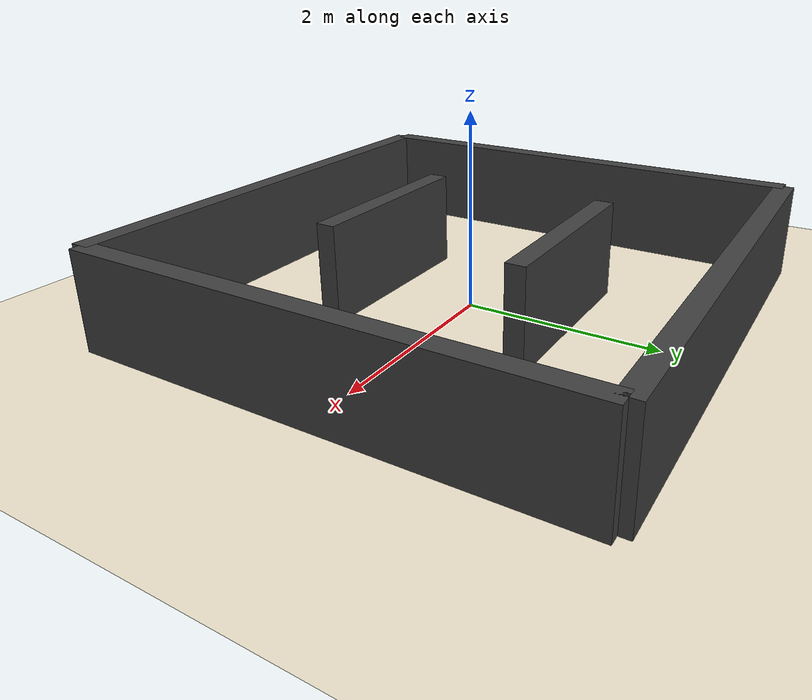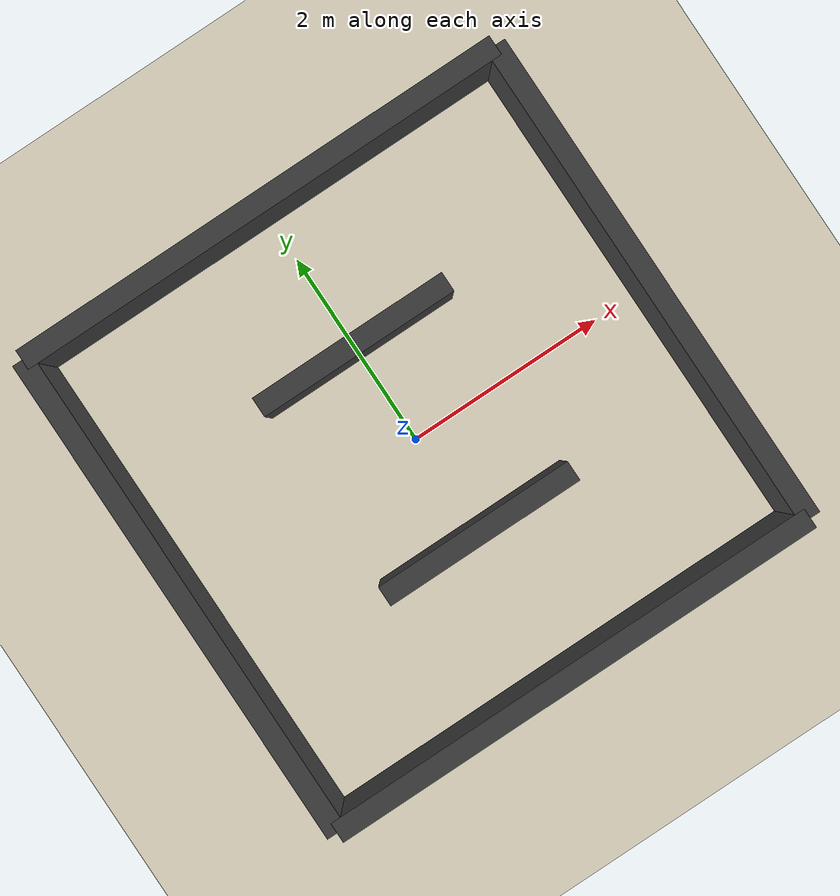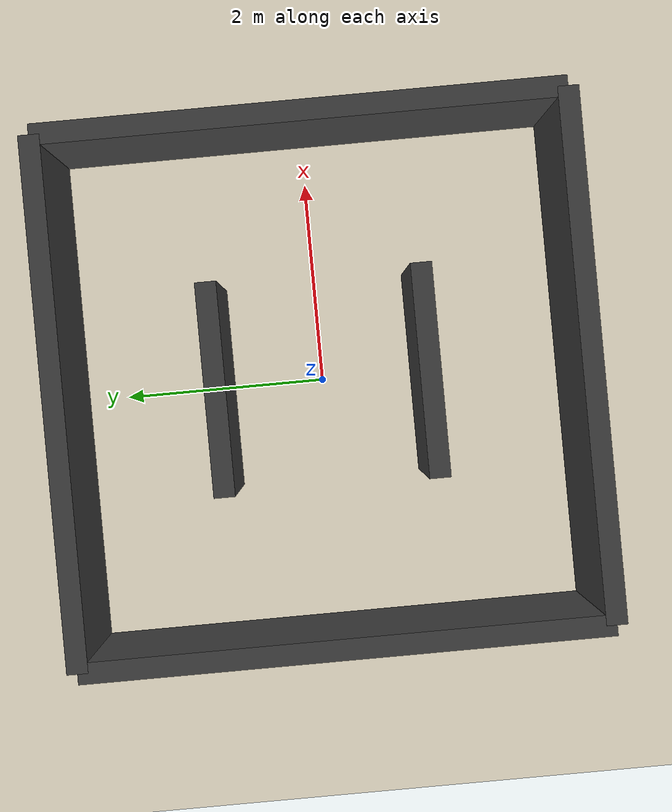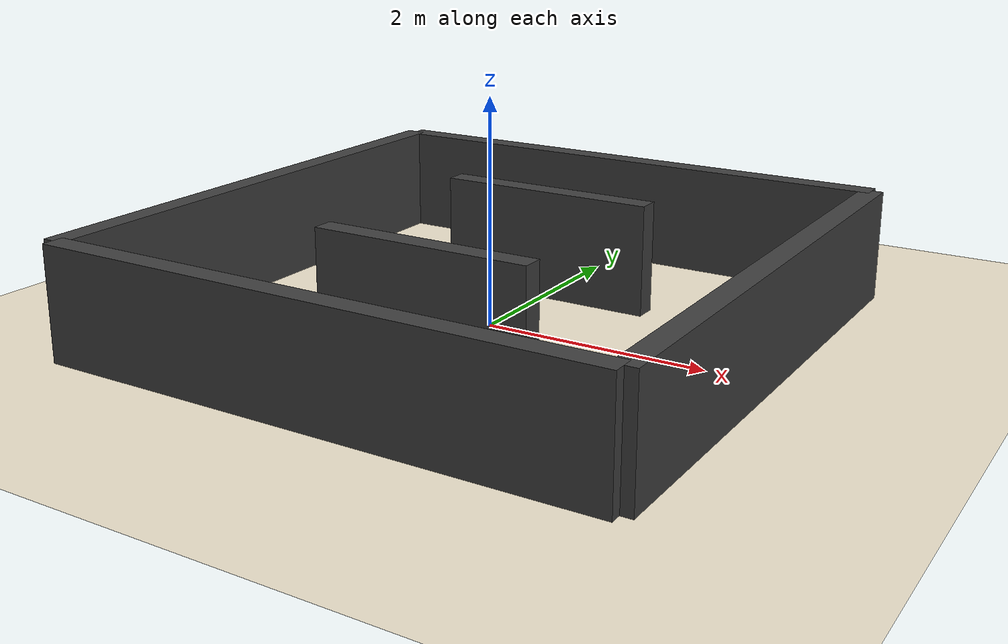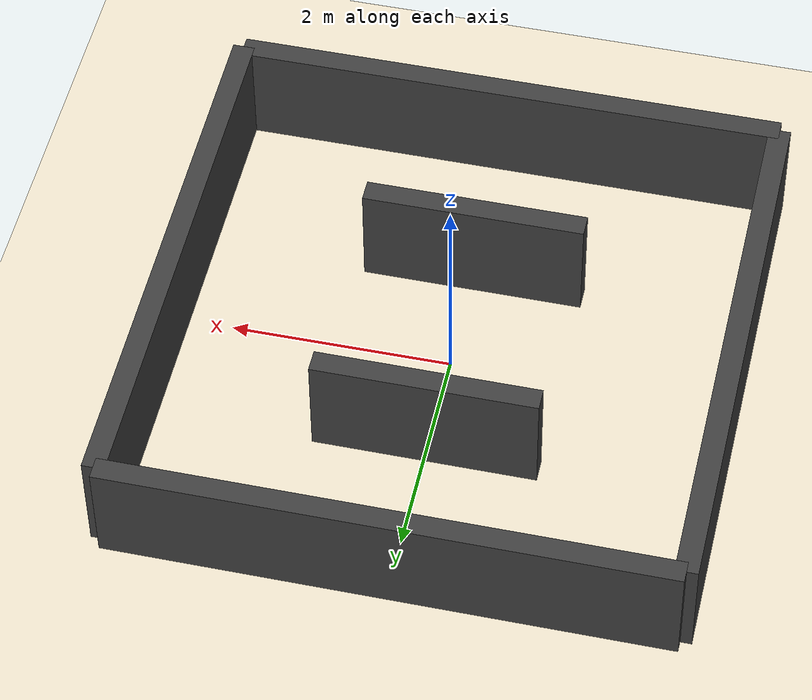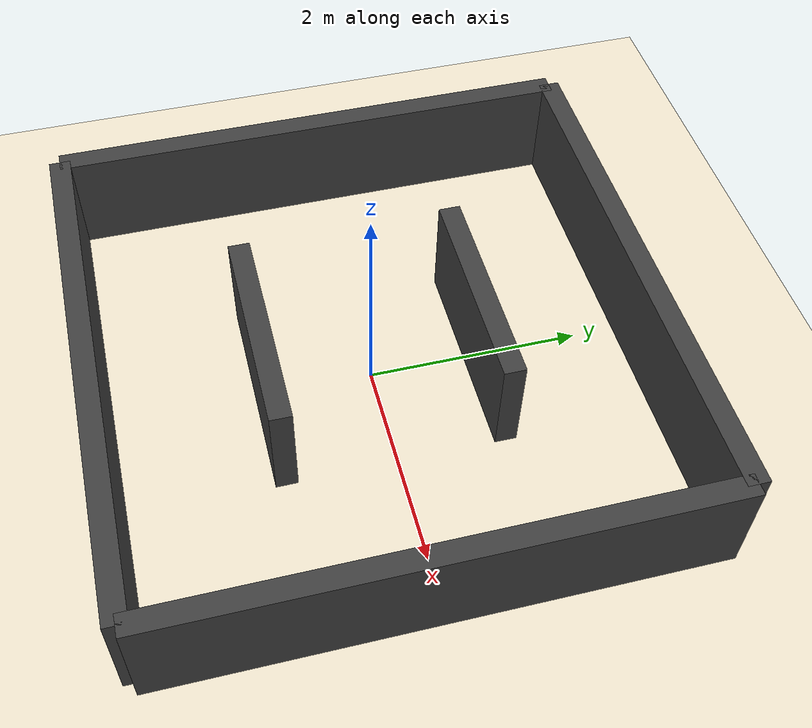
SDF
<?xml version="1.0" ?>

<sdf version="1.8">
  <world name="gazebo_world">
    <physics name='1ms' type='ignored'>
      <max_step_size>0.001</max_step_size>
      <real_time_factor>1</real_time_factor>
      <real_time_update_rate>1000</real_time_update_rate>
    </physics>
    <plugin name='ignition::gazebo::systems::Physics' filename='ignition-gazebo-physics-system'/>
    <plugin name='ignition::gazebo::systems::UserCommands' filename='ignition-gazebo-user-commands-system'/>
    <plugin name='ignition::gazebo::systems::SceneBroadcaster' filename='ignition-gazebo-scene-broadcaster-system'/>
    <plugin filename="ignition-gazebo-sensors-system" name="ignition::gazebo::systems::Sensors">
      <render_engine>ogre2</render_engine>
    </plugin>

    <plugin filename="libignition-gazebo-contact-system.so" name="ignition::gazebo::systems::Contact">
    </plugin>
    <scene>
      <ambient>1.0 1.0 1.0</ambient>
      <background>0.8 0.8 0.8</background>
    </scene>

    <light type="directional" name="sun">
      <cast_shadows>true</cast_shadows>
      <pose>0 0 10 0 0 0</pose>
      <diffuse>0.8 0.8 0.8 1</diffuse>
      <specular>0.2 0.2 0.2 1</specular>
      <attenuation>
        <range>1000</range>
        <constant>0.9</constant>
        <linear>0.01</linear>
        <quadratic>0.001</quadratic>
      </attenuation>
      <direction>-0.5 0.1 -0.9</direction>
    </light>

    <model name="ground_plane">
      <static>true</static>
      <link name="link">
        <collision name="collision">
          <geometry>
            <plane>
              <normal>0 0 1</normal>
              <size>20 20</size>
            </plane>
          </geometry>
        </collision>
        <visual name="visual">
          <geometry>
            <plane>
              <normal>0 0 1</normal>
              <size>20 20</size>
            </plane>
          </geometry>
          <material>
            <ambient>0.94 0.90 0.81 1</ambient>
            <diffuse>0.94 0.90 0.81 1</diffuse>
            <specular>1 1 1 0</specular>
          </material>
        </visual>
      </link>
    </model>

    <model name="simple_world">
      <include>
        <uri>simple_world</uri>
      </include>
    </model>

  </world>
</sdf>

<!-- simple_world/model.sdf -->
<sdf version="1.5">
  <model name="simple_world">
    <static>true</static>
    <link name="link_01">
      <pose>0.0 2.5 0.5 0 0 0</pose>
      <collision name="link_01_collision">
        <geometry>
          <box>
            <size>5.0 0.2 1.0</size>
          </box>
        </geometry>
      </collision>
      <visual name="link_01_visual">
        <cast_shadows>true</cast_shadows>
        <geometry>
          <box>
            <size>5.0 0.2 1.0</size>
          </box>
        </geometry>
        <material>
          <ambient>0.25 0.25 0.25 1.0</ambient>
          <diffuse>0.25 0.25 0.25 1.0</diffuse>
          <specular>0.1 0.1 0.1 1.0</specular>
          <emissive>0.0 0.0 0.0 1.0</emissive>
        </material>
      </visual>
    </link>

    <link name="link_02">
      <pose>0.0 -2.5 0.5 0 0 0</pose>
      <collision name="link_02_collision">
        <geometry>
          <box>
            <size>5.0 0.2 1.0</size>
          </box>
        </geometry>
      </collision>
      <visual name="link_02_visual">
        <cast_shadows>true</cast_shadows>
        <geometry>
          <box>
            <size>5.0 0.2 1.0</size>
          </box>
        </geometry>
        <material>
          <ambient>0.25 0.25 0.25 1.0</ambient>
          <diffuse>0.25 0.25 0.25 1.0</diffuse>
          <specular>0.1 0.1 0.1 1.0</specular>
          <emissive>0.0 0.0 0.0 1.0</emissive>
        </material>
      </visual>
    </link>

    <link name="link_03">
      <pose>2.5 0.0 0.5 0 0 1.5708</pose>
      <collision name="link_03_collision">
        <geometry>
          <box>
            <size>5.0 0.2 1.0</size>
          </box>
        </geometry>
      </collision>
      <visual name="link_03_visual">
        <cast_shadows>true</cast_shadows>
        <geometry>
          <box>
            <size>5.0 0.2 1.0</size>
          </box>
        </geometry>
        <material>
          <ambient>0.25 0.25 0.25 1.0</ambient>
          <diffuse>0.25 0.25 0.25 1.0</diffuse>
          <specular>0.1 0.1 0.1 1.0</specular>
          <emissive>0.0 0.0 0.0 1.0</emissive>
        </material>
      </visual>
    </link>

    <link name="link_04">
      <pose>-2.5 0.0 0.5 0 0 1.5708</pose>
      <collision name="link_04_collision">
        <geometry>
          <box>
            <size>5.0 0.2 1.0</size>
          </box>
        </geometry>
      </collision>
      <visual name="link_04_visual">
        <cast_shadows>true</cast_shadows>
        <geometry>
          <box>
            <size>5.0 0.2 1.0</size>
          </box>
        </geometry>
        <material>
          <ambient>0.25 0.25 0.25 1.0</ambient>
          <diffuse>0.25 0.25 0.25 1.0</diffuse>
          <specular>0.1 0.1 0.1 1.0</specular>
          <emissive>0.0 0.0 0.0 1.0</emissive>
        </material>
      </visual>
    </link>

    <link name="link_05">
      <pose>0.0 1.0 0.5 0 0 0</pose>
      <collision name="link_05_collision">
        <geometry>
          <box>
            <size>2.0 0.2 1.0</size>
          </box>
        </geometry>
      </collision>
      <visual name="link_05_visual">
        <cast_shadows>true</cast_shadows>
        <geometry>
          <box>
            <size>2.0 0.2 1.0</size>
          </box>
        </geometry>
        <material>
          <ambient>0.25 0.25 0.25 1.0</ambient>
          <diffuse>0.25 0.25 0.25 1.0</diffuse>
          <specular>0.1 0.1 0.1 1.0</specular>
          <emissive>0.0 0.0 0.0 1.0</emissive>
        </material>
      </visual>
    </link>

    <link name="link_06">
      <pose>0.0 -1.0 0.5 0 0 0</pose>
      <collision name="link_06_collision">
        <geometry>
          <box>
            <size>2.0 0.2 1.0</size>
          </box>
        </geometry>
      </collision>
      <visual name="link_06_visual">
        <cast_shadows>true</cast_shadows>
        <geometry>
          <box>
            <size>2.0 0.2 1.0</size>
          </box>
        </geometry>
        <material>
          <ambient>0.25 0.25 0.25 1.0</ambient>
          <diffuse>0.25 0.25 0.25 1.0</diffuse>
          <specular>0.1 0.1 0.1 1.0</specular>
          <emissive>0.0 0.0 0.0 1.0</emissive>
        </material>
      </visual>
    </link>

  </model>
</sdf>
